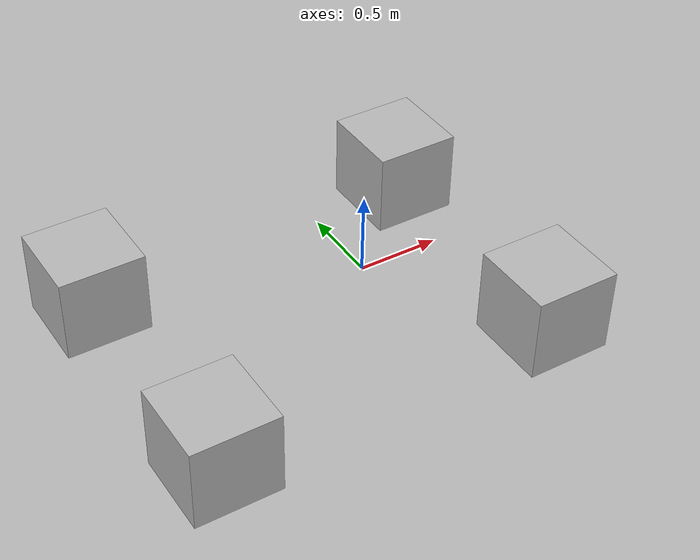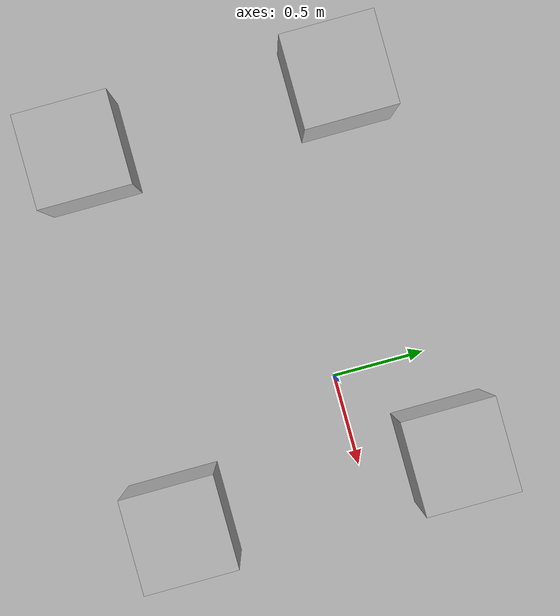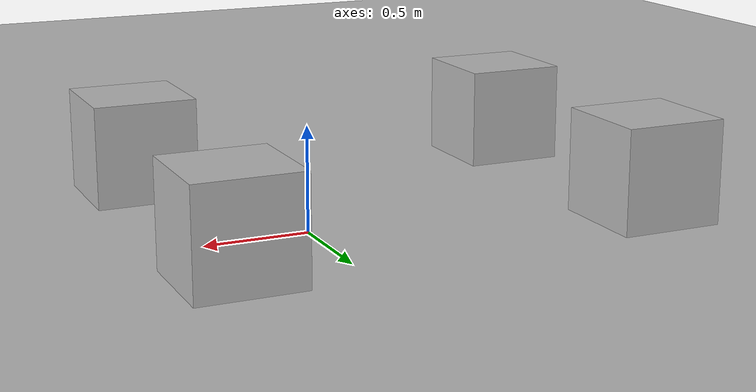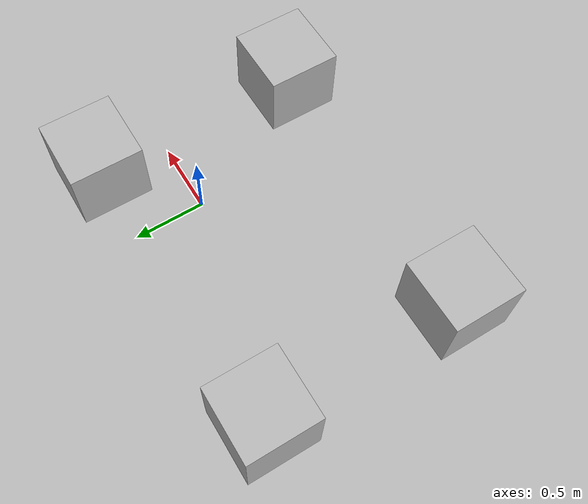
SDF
<sdf version="1.4">
  <world name="default">
    <scene>
      <ambient>0.8 0.8 0.8 1</ambient>
      <background>0.7 0.7 0.7 1</background>
      <shadows>true</shadows>
    </scene>

    <!-- A global light source -->
    <include>
      <uri>model://sun</uri>
      <pose> -2.0 2.0 2.0 0 0 0</pose>
    </include>

  <!-- Piso da sala - circuito -->
    <include>
      <uri>model://quadra/pisosala</uri>
      <pose> 0 0 0 0 0 0</pose>
    </include>

 <!-- car -->
    <include>
      <uri>model://quadra/objeto/car</uri>
      <pose> -1.52 0.42 0.251305 0 0 0</pose>
    </include>

 <!-- cow -->
    <include>
      <uri>model://quadra/objeto/cow</uri>
      <pose> -1.49 -0.99 0.251305 0 0 0</pose>
    </include>

 <!--horse -->
    <include>
      <uri>model://quadra/objeto/horse</uri>
      <pose> 0.53 0.49 0.251305 0 0 0</pose>
    </include>

 <!-- dog -->
    <include>
      <uri>model://quadra/objeto/dog</uri>
      <pose> 0.53 -0.99 0.251305 0 0 0</pose>
    </include>

    <physics type="ode">
      <real_time_update_rate>1000.0</real_time_update_rate>
      <max_step_size>0.001</max_step_size>
      <real_time_factor>1</real_time_factor>
      <ode>
        <solver>
          <type>quick</type>
          <iters>150</iters>
          <precon_iters>0</precon_iters>
          <sor>1.400000</sor>
          <use_dynamic_moi_rescaling>1</use_dynamic_moi_rescaling>
        </solver>
        <constraints>
          <cfm>0.00001</cfm>
          <erp>0.2</erp>
          <contact_max_correcting_vel>2000.000000</contact_max_correcting_vel>
          <contact_surface_layer>0.01000</contact_surface_layer>
        </constraints>
      </ode>
    </physics>

    <gui fullscreen='0'>
      <camera name='user_camera'>
        <pose frame=''>0.238775 -6.8831 10.8485 -0 0.979642 1.5602</pose>
        <view_controller>orbit</view_controller>
        <projection_type>perspective</projection_type>
      </camera>
    </gui>

  </world>

</sdf>

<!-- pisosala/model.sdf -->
<sdf version="1.6">
  <model name="pisosala_forca">
    <static>true</static>
    <link name="course_link">
      <collision name="course_collision">
        <geometry>
          <plane>
            <normal>0 0 1</normal>
            <size>10 13</size>
          </plane>
        </geometry>
        <surface>
          <friction>
            <ode>
              <mu>100</mu>
              <mu2>50</mu2>
            </ode>
          </friction>
        </surface>
      </collision>
      <visual name="course_visual">
        <cast_shadows>false</cast_shadows>
        <geometry>
          <mesh>
            <uri>model://forca/pisosala/materials/scripts/piso.dae</uri>
            <scale>1 1 1</scale>
          </mesh>
        </geometry>
      </visual>
    </link>
  </model>
</sdf>

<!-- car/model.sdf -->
<sdf version="1.6">
  <model name="car">
    <static>true</static>
    <link name="box">
      <pose>0 0 0 0 0 0</pose>
      <collision name="collision">
        <geometry>
          <box>
             <size>0.5 0.5 0.5</size>
          </box>
        </geometry>
      </collision>
      <visual name="visual">
        <geometry>
          <box>
             <size>0.5 0.5 0.5</size>
          </box>
        </geometry>
        <material>
          <script>
            <uri>model://quadra/objeto/car/materials/scripts</uri>
            <uri>model://quadra/objeto/car/materials/textures</uri>
            <name>car</name>
          </script>
        </material>
      </visual>
    </link>
  </model>
</sdf>

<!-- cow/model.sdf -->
<sdf version="1.6">
  <model name="cow">
    <static>true</static>
    <link name="box">
      <pose>0 0 0 0 0 0</pose>
      <collision name="collision">
        <geometry>
          <box>
            <size>0.5 0.5 0.5</size>
          </box>
        </geometry>
      </collision>
      <visual name="visual">
        <geometry>
          <box>
            <size>0.5 0.5 0.5</size>
          </box>
        </geometry>
        <material>
          <script>
            <uri>model://quadra//objeto/cow/materials/scripts</uri>
            <uri>model://quadra//objeto/cow/materials/textures</uri>
            <name>cow</name>
          </script>
        </material>
      </visual>
    </link>
  </model>
</sdf>

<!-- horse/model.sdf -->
<sdf version="1.6">
  <model name="horse">
    <static>true</static>
    <link name="box">
      <pose>0 0 0 0 0 0</pose>
      <collision name="collision">
        <geometry>
          <box>
            <size>0.5 0.5 0.5</size>
          </box>
        </geometry>
      </collision>
      <visual name="visual">
        <geometry>
          <box>
            <size>0.5 0.5 0.5</size>
          </box>
        </geometry>
        <material>
          <script>
            <uri>model://quadra//objeto/horse/materials/scripts</uri>
            <uri>model://quadra//objeto/horse/materials/textures</uri>
            <name>horse</name>
          </script>
        </material>
      </visual>
    </link>
  </model>
</sdf>

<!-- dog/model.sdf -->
<sdf version="1.6">
  <model name="dog">
    <static>true</static>
    <link name="box">
      <pose>0 0 0 0 0 0</pose>
      <collision name="collision">
        <geometry>
          <box>
            <size>0.5 0.5 0.5</size>
          </box>
        </geometry>
      </collision>
      <visual name="visual">
        <geometry>
          <box>
            <size>0.5 0.5 0.5</size>
          </box>
        </geometry>
        <material>
          <script>
            <uri>model://quadra//objeto/dog/materials/scripts</uri>
            <uri>model://quadra//objeto/dog/materials/textures</uri>
            <name>dog</name>
          </script>
        </material>
      </visual>
    </link>
  </model>
</sdf>
